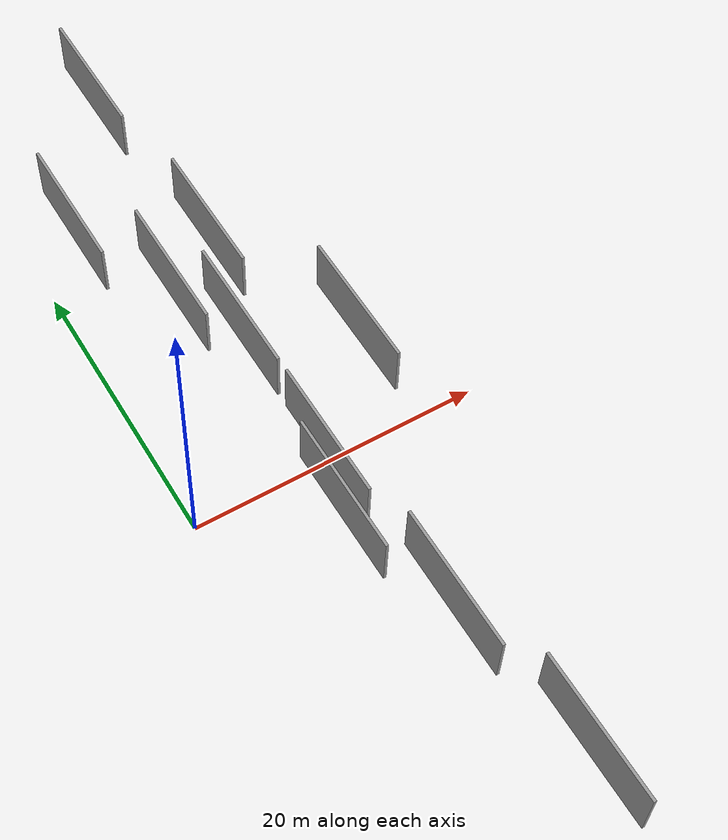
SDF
<sdf version="1.6">
 <world name="default">
  <scene>
   <sky><clouds><speed>12</speed></clouds></sky>
   <ambient>0.4 0.4 0.4 1</ambient>
   <background>0.7 0.7 0.7 1</background>
   <shadows>1</shadows>
  </scene>
  <gravity>0 0 -9.8066</gravity>
  <magnetic_field>6e-06 2.3e-05 -4.2e-05</magnetic_field>
  <physics default="0" name="default_physics" type="ode">
   <ode>
    <solver>
     <type>quick</type>
     <iters>10</iters>
     <sor>1.0</sor>
     <use_dynamic_moi_rescaling>0</use_dynamic_moi_rescaling>
    </solver>
    <constraints>
     <cfm>0</cfm>
     <erp>0.2</erp>
     <contact_max_correcting_vel>100</contact_max_correcting_vel>
     <contact_surface_layer>0.001</contact_surface_layer>
    </constraints>
   </ode>
   <max_step_size>0.004</max_step_size>
   <real_time_factor>1</real_time_factor>
   <real_time_update_rate>250</real_time_update_rate>
  </physics>
  <light name="sun" type="directional">
   <pose>0 0 10 0 0 0</pose>
   <diffuse>0.8 0.8 0.8 1</diffuse>
   <specular>0.2 0.2 0.2 1</specular>
   <attenuation>
    <range>1000</range>
    <constant>0.9</constant>
    <linear>0.01</linear>
    <quadratic>0.001</quadratic>
   </attenuation>
   <direction>-0.5 0.1 -0.9</direction>
  </light>
  <model name="grey_wall_1">
   <static>1</static>
   <pose>9.3448 0.0448 0.0 0.000000 0.000000 1.570796</pose>
   <link name="link">
    <pose>0 0 2.00 0 0 0</pose>
    <collision name="collision"><geometry><box><size>10.00 0.2 4.00</size></box></geometry></collision>
    <visual name="visual">
     <cast_shadows>0</cast_shadows>
     <geometry><box><size>10.00 0.2 4.00</size></box></geometry>
     <material>
      <script>
       <uri>model://grey_wall/materials/scripts</uri>
       <uri>model://grey_wall/materials/textures</uri>
       <name>vrc/grey_wall</name>
      </script>
     </material>
    </visual>
   </link>
  </model>
  <model name="grey_wall_2">
   <static>1</static>
   <pose>10.5680 -12.3884 0.0 0.000000 0.000000 1.570796</pose>
   <link name="link">
    <pose>0 0 2.00 0 0 0</pose>
    <collision name="collision"><geometry><box><size>10.00 0.2 4.00</size></box></geometry></collision>
    <visual name="visual">
     <cast_shadows>0</cast_shadows>
     <geometry><box><size>10.00 0.2 4.00</size></box></geometry>
     <material>
      <script>
       <uri>model://grey_wall/materials/scripts</uri>
       <uri>model://grey_wall/materials/textures</uri>
       <name>vrc/grey_wall</name>
      </script>
     </material>
    </visual>
   </link>
  </model>
  <model name="grey_wall_3">
   <static>1</static>
   <pose>7.0800 16.2823 0.0 0.000000 0.000000 1.570796</pose>
   <link name="link">
    <pose>0 0 2.00 0 0 0</pose>
    <collision name="collision"><geometry><box><size>10.00 0.2 4.00</size></box></geometry></collision>
    <visual name="visual">
     <cast_shadows>0</cast_shadows>
     <geometry><box><size>10.00 0.2 4.00</size></box></geometry>
     <material>
      <script>
       <uri>model://grey_wall/materials/scripts</uri>
       <uri>model://grey_wall/materials/textures</uri>
       <name>vrc/grey_wall</name>
      </script>
     </material>
    </visual>
   </link>
  </model>
  <model name="grey_wall_4">
   <static>1</static>
   <pose>16.0771 7.5340 0.0 0.000000 0.000000 1.570796</pose>
   <link name="link">
    <pose>0 0 2.00 0 0 0</pose>
    <collision name="collision"><geometry><box><size>10.00 0.2 4.00</size></box></geometry></collision>
    <visual name="visual">
     <cast_shadows>0</cast_shadows>
     <geometry><box><size>10.00 0.2 4.00</size></box></geometry>
     <material>
      <script>
       <uri>model://grey_wall/materials/scripts</uri>
       <uri>model://grey_wall/materials/textures</uri>
       <name>vrc/grey_wall</name>
      </script>
     </material>
    </visual>
   </link>
  </model>
  <model name="grey_wall_5">
   <static>1</static>
   <pose>11.3033 19.0985 0.0 0.000000 0.000000 1.570796</pose>
   <link name="link">
    <pose>0 0 2.00 0 0 0</pose>
    <collision name="collision"><geometry><box><size>10.00 0.2 4.00</size></box></geometry></collision>
    <visual name="visual">
     <cast_shadows>0</cast_shadows>
     <geometry><box><size>10.00 0.2 4.00</size></box></geometry>
     <material>
      <script>
       <uri>model://grey_wall/materials/scripts</uri>
       <uri>model://grey_wall/materials/textures</uri>
       <name>vrc/grey_wall</name>
      </script>
     </material>
    </visual>
   </link>
  </model>
  <model name="grey_wall_6">
   <static>1</static>
   <pose>8.2170 -3.7384 0.0 0.000000 0.000000 1.570796</pose>
   <link name="link">
    <pose>0 0 2.00 0 0 0</pose>
    <collision name="collision"><geometry><box><size>10.00 0.2 4.00</size></box></geometry></collision>
    <visual name="visual">
     <cast_shadows>0</cast_shadows>
     <geometry><box><size>10.00 0.2 4.00</size></box></geometry>
     <material>
      <script>
       <uri>model://grey_wall/materials/scripts</uri>
       <uri>model://grey_wall/materials/textures</uri>
       <name>vrc/grey_wall</name>
      </script>
     </material>
    </visual>
   </link>
  </model>
  <model name="grey_wall_7">
   <static>1</static>
   <pose>10.1313 34.2969 0.0 0.000000 0.000000 1.570796</pose>
   <link name="link">
    <pose>0 0 2.00 0 0 0</pose>
    <collision name="collision"><geometry><box><size>10.00 0.2 4.00</size></box></geometry></collision>
    <visual name="visual">
     <cast_shadows>0</cast_shadows>
     <geometry><box><size>10.00 0.2 4.00</size></box></geometry>
     <material>
      <script>
       <uri>model://grey_wall/materials/scripts</uri>
       <uri>model://grey_wall/materials/textures</uri>
       <name>vrc/grey_wall</name>
      </script>
     </material>
    </visual>
   </link>
  </model>
  <model name="grey_wall_8">
   <static>1</static>
   <pose>9.3110 10.9948 0.0 0.000000 0.000000 1.570796</pose>
   <link name="link">
    <pose>0 0 2.00 0 0 0</pose>
    <collision name="collision"><geometry><box><size>10.00 0.2 4.00</size></box></geometry></collision>
    <visual name="visual">
     <cast_shadows>0</cast_shadows>
     <geometry><box><size>10.00 0.2 4.00</size></box></geometry>
     <material>
      <script>
       <uri>model://grey_wall/materials/scripts</uri>
       <uri>model://grey_wall/materials/textures</uri>
       <name>vrc/grey_wall</name>
      </script>
     </material>
    </visual>
   </link>
  </model>
  <model name="grey_wall_9">
   <static>1</static>
   <pose>3.5773 24.1762 0.0 0.000000 0.000000 1.570796</pose>
   <link name="link">
    <pose>0 0 2.00 0 0 0</pose>
    <collision name="collision"><geometry><box><size>10.00 0.2 4.00</size></box></geometry></collision>
    <visual name="visual">
     <cast_shadows>0</cast_shadows>
     <geometry><box><size>10.00 0.2 4.00</size></box></geometry>
     <material>
      <script>
       <uri>model://grey_wall/materials/scripts</uri>
       <uri>model://grey_wall/materials/textures</uri>
       <name>vrc/grey_wall</name>
      </script>
     </material>
    </visual>
   </link>
  </model>
  <model name="grey_wall_10">
   <static>1</static>
   <pose>12.4012 -23.9738 0.0 0.000000 0.000000 1.570796</pose>
   <link name="link">
    <pose>0 0 2.00 0 0 0</pose>
    <collision name="collision"><geometry><box><size>10.00 0.2 4.00</size></box></geometry></collision>
    <visual name="visual">
     <cast_shadows>0</cast_shadows>
     <geometry><box><size>10.00 0.2 4.00</size></box></geometry>
     <material>
      <script>
       <uri>model://grey_wall/materials/scripts</uri>
       <uri>model://grey_wall/materials/textures</uri>
       <name>vrc/grey_wall</name>
      </script>
     </material>
    </visual>
   </link>
  </model>
 </world>
</sdf>
